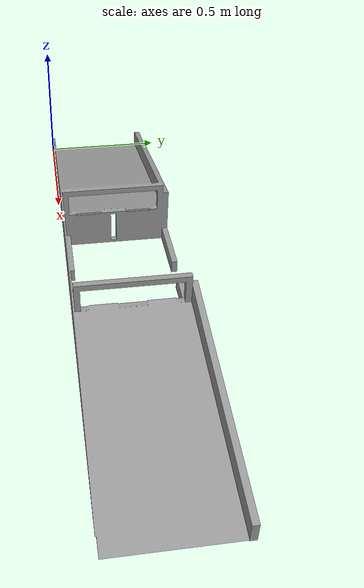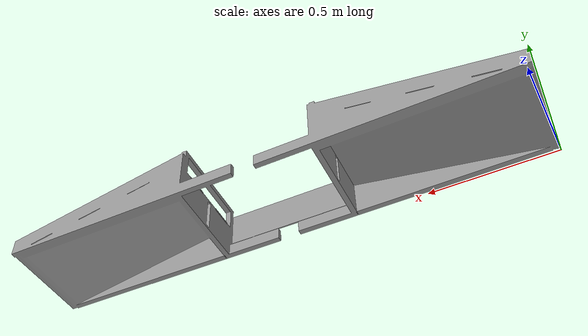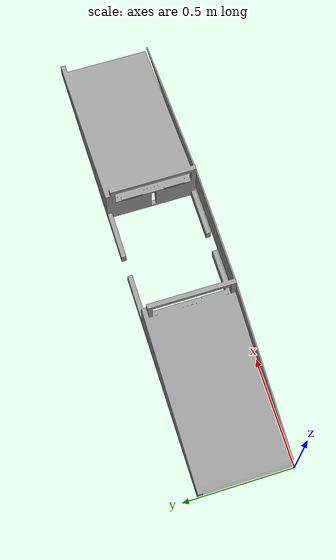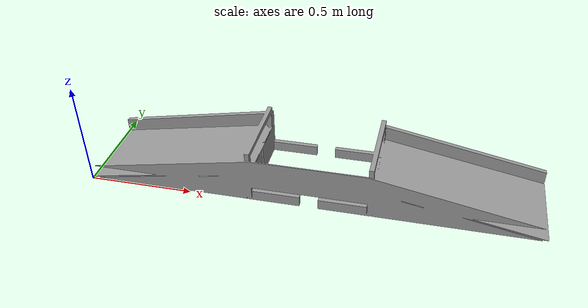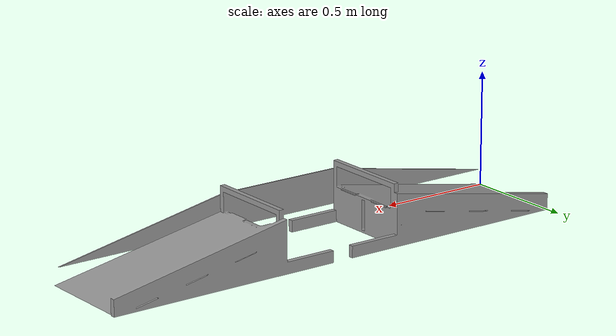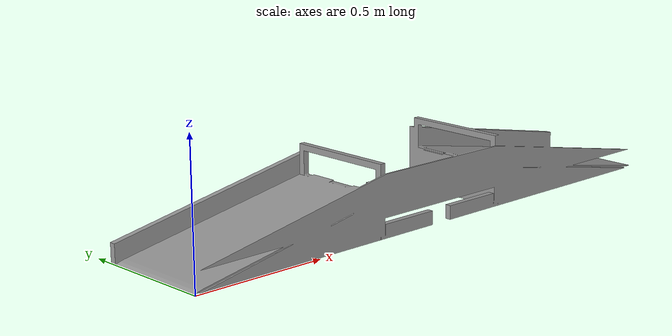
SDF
<?xml version="1.0"?>
<sdf version="1.5">
    <model name="rampe">
        <static>false</static>
        <link name="table_rampe">
            <collision name="collision">
                <geometry>
                    <mesh>
                        <uri>model://rampe/meshes/assemblage1.STL</uri>
                        <scale>0.001 0.001 0.001</scale>
                    </mesh>
                </geometry>
                <surface>
                    <friction>
                        <ode>
                            <mu>100</mu>
                            <mu2>50</mu2>
                        </ode>
                    </friction>
                </surface>
            </collision>
            <visual name="visual">
                <geometry>
                    <mesh>
                        <uri>model://rampe/meshes/assemblage1.STL</uri>
                        <scale>0.001 0.001 0.001</scale>
                    </mesh>
                </geometry>
                <material>
                    <script>
                        <uri>file://media/materials/scripts/gazebo.material</uri>
                        <name>Gazebo/Grey</name>
                    </script>
                </material>
            </visual>
        </link>
    </model>
</sdf>
